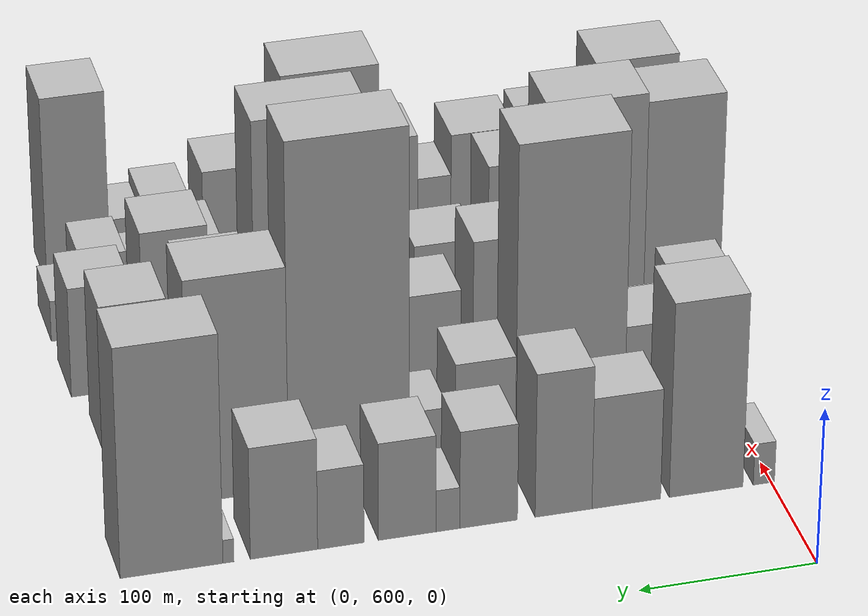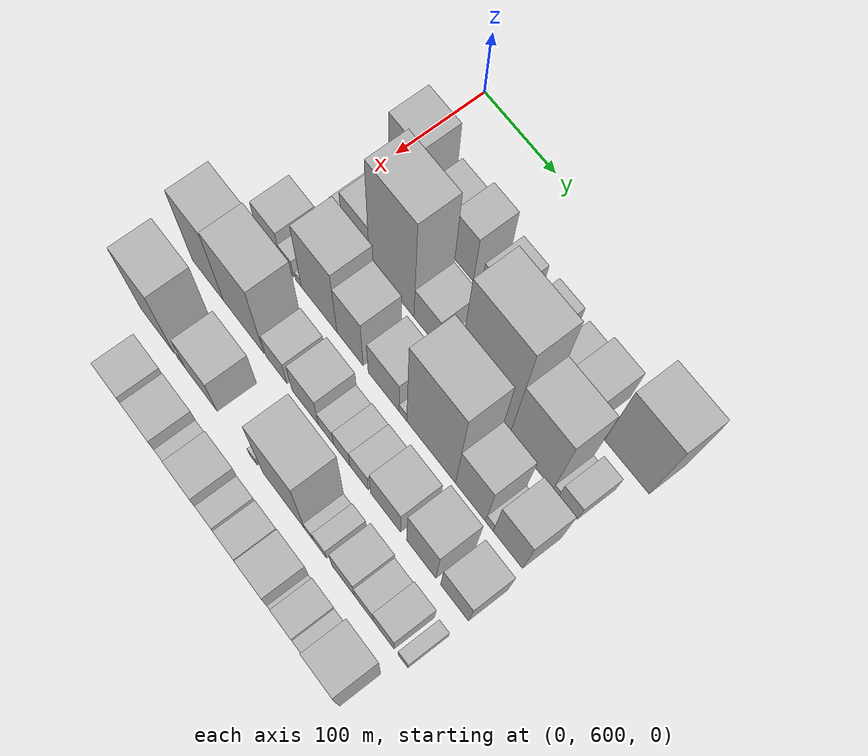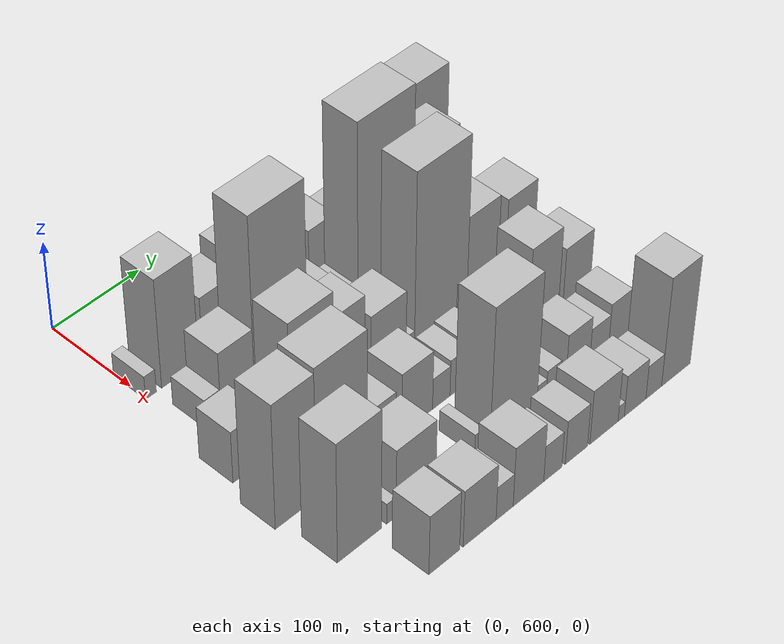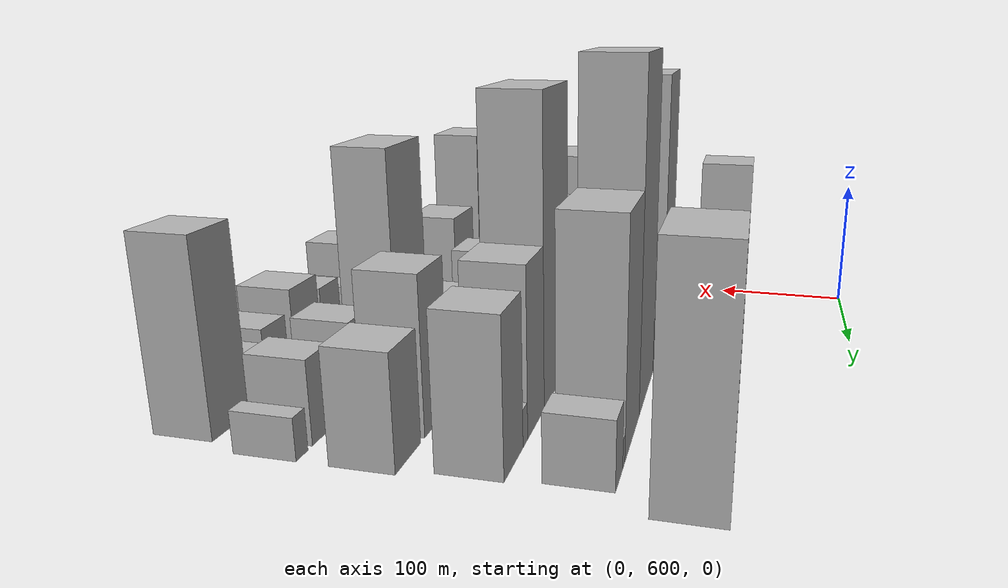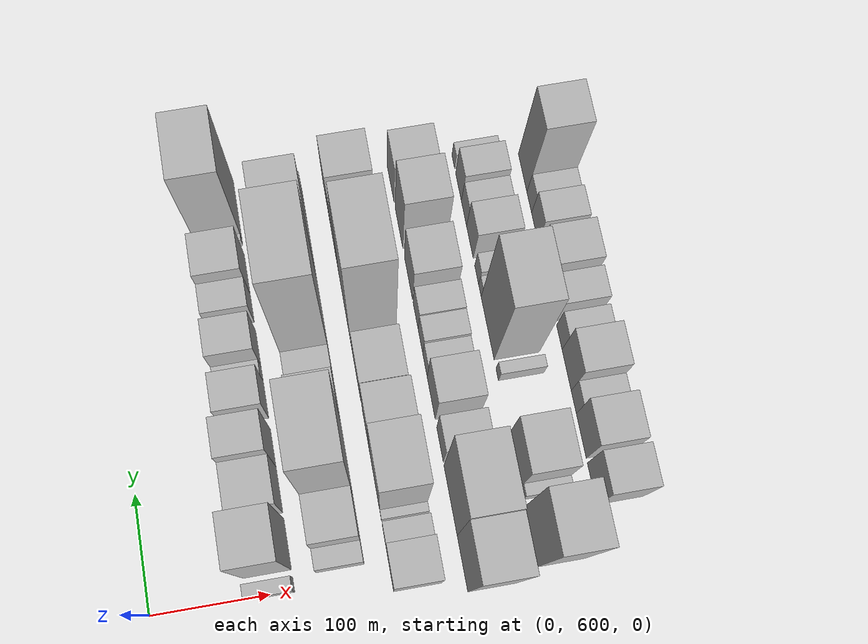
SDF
<sdf version="1.6">
 <world name="default">
  <model name="building_45">
   <static>1</static>
   <pose>100.0000 604.4444 0 0.000000 0.000000 0.000000</pose>
   <link name="link">
    <pose>0 0 13.50 0 0 0</pose>
    <collision name="collision"><geometry><box><size>40.0000 12.2811 27.0000</size></box></geometry></collision>
    <visual name="visual">
     <cast_shadows>0</cast_shadows>
     <geometry><box><size>40.0000 12.2811 27.0000</size></box></geometry>
     <material>
      <script>
       <uri>model://HANNAS_wall/materials/scripts</uri>
       <uri>model://HANNAS_wall/materials/textures</uri>
       <name>vrc/HANNAS_wall</name>
      </script>
     </material>
    </visual>
   </link>
  </model>
  <model name="building_46">
   <static>1</static>
   <pose>100.0000 637.7683 0 0.000000 0.000000 0.000000</pose>
   <link name="link">
    <pose>0 0 63.00 0 0 0</pose>
    <collision name="collision"><geometry><box><size>40.0000 42.3668 126.0000</size></box></geometry></collision>
    <visual name="visual">
     <cast_shadows>0</cast_shadows>
     <geometry><box><size>40.0000 42.3668 126.0000</size></box></geometry>
     <material>
      <script>
       <uri>model://HANNAS_wall/materials/scripts</uri>
       <uri>model://HANNAS_wall/materials/textures</uri>
       <name>vrc/HANNAS_wall</name>
      </script>
     </material>
    </visual>
   </link>
  </model>
  <model name="building_47">
   <static>1</static>
   <pose>100.0000 683.5927 0 0.000000 0.000000 0.000000</pose>
   <link name="link">
    <pose>0 0 36.00 0 0 0</pose>
    <collision name="collision"><geometry><box><size>40.0000 39.2818 72.0000</size></box></geometry></collision>
    <visual name="visual">
     <cast_shadows>0</cast_shadows>
     <geometry><box><size>40.0000 39.2818 72.0000</size></box></geometry>
     <material>
      <script>
       <uri>model://HANNAS_wall/materials/scripts</uri>
       <uri>model://HANNAS_wall/materials/textures</uri>
       <name>vrc/HANNAS_wall</name>
      </script>
     </material>
    </visual>
   </link>
  </model>
  <model name="building_48">
   <static>1</static>
   <pose>100.0000 719.4059 0 0.000000 0.000000 0.000000</pose>
   <link name="link">
    <pose>0 0 46.50 0 0 0</pose>
    <collision name="collision"><geometry><box><size>40.0000 32.3447 93.0000</size></box></geometry></collision>
    <visual name="visual">
     <cast_shadows>0</cast_shadows>
     <geometry><box><size>40.0000 32.3447 93.0000</size></box></geometry>
     <material>
      <script>
       <uri>model://HANNAS_wall/materials/scripts</uri>
       <uri>model://HANNAS_wall/materials/textures</uri>
       <name>vrc/HANNAS_wall</name>
      </script>
     </material>
    </visual>
   </link>
  </model>
  <model name="building_49">
   <static>1</static>
   <pose>100.0000 761.8796 0 0.000000 0.000000 0.000000</pose>
   <link name="link">
    <pose>0 0 31.50 0 0 0</pose>
    <collision name="collision"><geometry><box><size>40.0000 32.6027 63.0000</size></box></geometry></collision>
    <visual name="visual">
     <cast_shadows>0</cast_shadows>
     <geometry><box><size>40.0000 32.6027 63.0000</size></box></geometry>
     <material>
      <script>
       <uri>model://HANNAS_wall/materials/scripts</uri>
       <uri>model://HANNAS_wall/materials/textures</uri>
       <name>vrc/HANNAS_wall</name>
      </script>
     </material>
    </visual>
   </link>
  </model>
  <model name="building_50">
   <static>1</static>
   <pose>100.0000 784.9142 0 0.000000 0.000000 0.000000</pose>
   <link name="link">
    <pose>0 0 13.50 0 0 0</pose>
    <collision name="collision"><geometry><box><size>40.0000 13.4664 27.0000</size></box></geometry></collision>
    <visual name="visual">
     <cast_shadows>0</cast_shadows>
     <geometry><box><size>40.0000 13.4664 27.0000</size></box></geometry>
     <material>
      <script>
       <uri>model://HANNAS_wall/materials/scripts</uri>
       <uri>model://HANNAS_wall/materials/textures</uri>
       <name>vrc/HANNAS_wall</name>
      </script>
     </material>
    </visual>
   </link>
  </model>
  <model name="building_51">
   <static>1</static>
   <pose>100.0000 807.7742 0 0.000000 0.000000 0.000000</pose>
   <link name="link">
    <pose>0 0 31.50 0 0 0</pose>
    <collision name="collision"><geometry><box><size>40.0000 32.2536 63.0000</size></box></geometry></collision>
    <visual name="visual">
     <cast_shadows>0</cast_shadows>
     <geometry><box><size>40.0000 32.2536 63.0000</size></box></geometry>
     <material>
      <script>
       <uri>model://HANNAS_wall/materials/scripts</uri>
       <uri>model://HANNAS_wall/materials/textures</uri>
       <name>vrc/HANNAS_wall</name>
      </script>
     </material>
    </visual>
   </link>
  </model>
  <model name="building_52">
   <static>1</static>
   <pose>100.0000 844.8449 0 0.000000 0.000000 0.000000</pose>
   <link name="link">
    <pose>0 0 25.50 0 0 0</pose>
    <collision name="collision"><geometry><box><size>40.0000 25.8878 51.0000</size></box></geometry></collision>
    <visual name="visual">
     <cast_shadows>0</cast_shadows>
     <geometry><box><size>40.0000 25.8878 51.0000</size></box></geometry>
     <material>
      <script>
       <uri>model://HANNAS_wall/materials/scripts</uri>
       <uri>model://HANNAS_wall/materials/textures</uri>
       <name>vrc/HANNAS_wall</name>
      </script>
     </material>
    </visual>
   </link>
  </model>
  <model name="building_53">
   <static>1</static>
   <pose>100.0000 876.4943 0 0.000000 0.000000 0.000000</pose>
   <link name="link">
    <pose>0 0 36.00 0 0 0</pose>
    <collision name="collision"><geometry><box><size>40.0000 37.4111 72.0000</size></box></geometry></collision>
    <visual name="visual">
     <cast_shadows>0</cast_shadows>
     <geometry><box><size>40.0000 37.4111 72.0000</size></box></geometry>
     <material>
      <script>
       <uri>model://HANNAS_wall/materials/scripts</uri>
       <uri>model://HANNAS_wall/materials/textures</uri>
       <name>vrc/HANNAS_wall</name>
      </script>
     </material>
    </visual>
   </link>
  </model>
  <model name="building_54">
   <static>1</static>
   <pose>100.0000 907.2479 0 0.000000 0.000000 0.000000</pose>
   <link name="link">
    <pose>0 0 7.50 0 0 0</pose>
    <collision name="collision"><geometry><box><size>40.0000 6.0962 15.0000</size></box></geometry></collision>
    <visual name="visual">
     <cast_shadows>0</cast_shadows>
     <geometry><box><size>40.0000 6.0962 15.0000</size></box></geometry>
     <material>
      <script>
       <uri>model://HANNAS_wall/materials/scripts</uri>
       <uri>model://HANNAS_wall/materials/textures</uri>
       <name>vrc/HANNAS_wall</name>
      </script>
     </material>
    </visual>
   </link>
  </model>
  <model name="building_55">
   <static>1</static>
   <pose>100.0000 938.5832 0 0.000000 0.000000 0.000000</pose>
   <link name="link">
    <pose>0 0 73.50 0 0 0</pose>
    <collision name="collision"><geometry><box><size>40.0000 56.5743 147.0000</size></box></geometry></collision>
    <visual name="visual">
     <cast_shadows>0</cast_shadows>
     <geometry><box><size>40.0000 56.5743 147.0000</size></box></geometry>
     <material>
      <script>
       <uri>model://HANNAS_wall/materials/scripts</uri>
       <uri>model://HANNAS_wall/materials/textures</uri>
       <name>vrc/HANNAS_wall</name>
      </script>
     </material>
    </visual>
   </link>
  </model>
  <model name="building_95">
   <static>1</static>
   <pose>160.0000 619.4697 0 0.000000 0.000000 0.000000</pose>
   <link name="link">
    <pose>0 0 16.50 0 0 0</pose>
    <collision name="collision"><geometry><box><size>40.0000 17.6292 33.0000</size></box></geometry></collision>
    <visual name="visual">
     <cast_shadows>0</cast_shadows>
     <geometry><box><size>40.0000 17.6292 33.0000</size></box></geometry>
     <material>
      <script>
       <uri>model://HANNAS_wall/materials/scripts</uri>
       <uri>model://HANNAS_wall/materials/textures</uri>
       <name>vrc/HANNAS_wall</name>
      </script>
     </material>
    </visual>
   </link>
  </model>
  <model name="building_96">
   <static>1</static>
   <pose>160.0000 647.8211 0 0.000000 0.000000 0.000000</pose>
   <link name="link">
    <pose>0 0 37.50 0 0 0</pose>
    <collision name="collision"><geometry><box><size>40.0000 39.0735 75.0000</size></box></geometry></collision>
    <visual name="visual">
     <cast_shadows>0</cast_shadows>
     <geometry><box><size>40.0000 39.0735 75.0000</size></box></geometry>
     <material>
      <script>
       <uri>model://HANNAS_wall/materials/scripts</uri>
       <uri>model://HANNAS_wall/materials/textures</uri>
       <name>vrc/HANNAS_wall</name>
      </script>
     </material>
    </visual>
   </link>
  </model>
  <model name="building_97">
   <static>1</static>
   <pose>160.0000 698.8266 0 0.000000 0.000000 0.000000</pose>
   <link name="link">
    <pose>0 0 100.50 0 0 0</pose>
    <collision name="collision"><geometry><box><size>40.0000 62.9375 201.0000</size></box></geometry></collision>
    <visual name="visual">
     <cast_shadows>0</cast_shadows>
     <geometry><box><size>40.0000 62.9375 201.0000</size></box></geometry>
     <material>
      <script>
       <uri>model://HANNAS_wall/materials/scripts</uri>
       <uri>model://HANNAS_wall/materials/textures</uri>
       <name>vrc/HANNAS_wall</name>
      </script>
     </material>
    </visual>
   </link>
  </model>
  <model name="building_98">
   <static>1</static>
   <pose>160.0000 747.5904 0 0.000000 0.000000 0.000000</pose>
   <link name="link">
    <pose>0 0 33.00 0 0 0</pose>
    <collision name="collision"><geometry><box><size>40.0000 34.5901 66.0000</size></box></geometry></collision>
    <visual name="visual">
     <cast_shadows>0</cast_shadows>
     <geometry><box><size>40.0000 34.5901 66.0000</size></box></geometry>
     <material>
      <script>
       <uri>model://HANNAS_wall/materials/scripts</uri>
       <uri>model://HANNAS_wall/materials/textures</uri>
       <name>vrc/HANNAS_wall</name>
      </script>
     </material>
    </visual>
   </link>
  </model>
  <model name="building_99">
   <static>1</static>
   <pose>160.0000 780.0531 0 0.000000 0.000000 0.000000</pose>
   <link name="link">
    <pose>0 0 19.50 0 0 0</pose>
    <collision name="collision"><geometry><box><size>40.0000 22.3353 39.0000</size></box></geometry></collision>
    <visual name="visual">
     <cast_shadows>0</cast_shadows>
     <geometry><box><size>40.0000 22.3353 39.0000</size></box></geometry>
     <material>
      <script>
       <uri>model://HANNAS_wall/materials/scripts</uri>
       <uri>model://HANNAS_wall/materials/textures</uri>
       <name>vrc/HANNAS_wall</name>
      </script>
     </material>
    </visual>
   </link>
  </model>
  <model name="building_100">
   <static>1</static>
   <pose>160.0000 825.4965 0 0.000000 0.000000 0.000000</pose>
   <link name="link">
    <pose>0 0 111.00 0 0 0</pose>
    <collision name="collision"><geometry><box><size>40.0000 68.5515 222.0000</size></box></geometry></collision>
    <visual name="visual">
     <cast_shadows>0</cast_shadows>
     <geometry><box><size>40.0000 68.5515 222.0000</size></box></geometry>
     <material>
      <script>
       <uri>model://HANNAS_wall/materials/scripts</uri>
       <uri>model://HANNAS_wall/materials/textures</uri>
       <name>vrc/HANNAS_wall</name>
      </script>
     </material>
    </visual>
   </link>
  </model>
  <model name="building_101">
   <static>1</static>
   <pose>160.0000 888.1420 0 0.000000 0.000000 0.000000</pose>
   <link name="link">
    <pose>0 0 72.00 0 0 0</pose>
    <collision name="collision"><geometry><box><size>40.0000 56.7396 144.0000</size></box></geometry></collision>
    <visual name="visual">
     <cast_shadows>0</cast_shadows>
     <geometry><box><size>40.0000 56.7396 144.0000</size></box></geometry>
     <material>
      <script>
       <uri>model://HANNAS_wall/materials/scripts</uri>
       <uri>model://HANNAS_wall/materials/textures</uri>
       <name>vrc/HANNAS_wall</name>
      </script>
     </material>
    </visual>
   </link>
  </model>
  <model name="building_102">
   <static>1</static>
   <pose>160.0000 920.1755 0 0.000000 0.000000 0.000000</pose>
   <link name="link">
    <pose>0 0 9.00 0 0 0</pose>
    <collision name="collision"><geometry><box><size>40.0000 7.3274 18.0000</size></box></geometry></collision>
    <visual name="visual">
     <cast_shadows>0</cast_shadows>
     <geometry><box><size>40.0000 7.3274 18.0000</size></box></geometry>
     <material>
      <script>
       <uri>model://HANNAS_wall/materials/scripts</uri>
       <uri>model://HANNAS_wall/materials/textures</uri>
       <name>vrc/HANNAS_wall</name>
      </script>
     </material>
    </visual>
   </link>
  </model>
  <model name="building_103">
   <static>1</static>
   <pose>160.0000 935.6864 0 0.000000 0.000000 0.000000</pose>
   <link name="link">
    <pose>0 0 21.00 0 0 0</pose>
    <collision name="collision"><geometry><box><size>40.0000 23.6943 42.0000</size></box></geometry></collision>
    <visual name="visual">
     <cast_shadows>0</cast_shadows>
     <geometry><box><size>40.0000 23.6943 42.0000</size></box></geometry>
     <material>
      <script>
       <uri>model://HANNAS_wall/materials/scripts</uri>
       <uri>model://HANNAS_wall/materials/textures</uri>
       <name>vrc/HANNAS_wall</name>
      </script>
     </material>
    </visual>
   </link>
  </model>
  <model name="building_147">
   <static>1</static>
   <pose>220.0000 602.4868 0 0.000000 0.000000 0.000000</pose>
   <link name="link">
    <pose>0 0 30.00 0 0 0</pose>
    <collision name="collision"><geometry><box><size>40.0000 35.6478 60.0000</size></box></geometry></collision>
    <visual name="visual">
     <cast_shadows>0</cast_shadows>
     <geometry><box><size>40.0000 35.6478 60.0000</size></box></geometry>
     <material>
      <script>
       <uri>model://HANNAS_wall/materials/scripts</uri>
       <uri>model://HANNAS_wall/materials/textures</uri>
       <name>vrc/HANNAS_wall</name>
      </script>
     </material>
    </visual>
   </link>
  </model>
  <model name="building_148">
   <static>1</static>
   <pose>220.0000 629.9202 0 0.000000 0.000000 0.000000</pose>
   <link name="link">
    <pose>0 0 18.00 0 0 0</pose>
    <collision name="collision"><geometry><box><size>40.0000 19.2191 36.0000</size></box></geometry></collision>
    <visual name="visual">
     <cast_shadows>0</cast_shadows>
     <geometry><box><size>40.0000 19.2191 36.0000</size></box></geometry>
     <material>
      <script>
       <uri>model://HANNAS_wall/materials/scripts</uri>
       <uri>model://HANNAS_wall/materials/textures</uri>
       <name>vrc/HANNAS_wall</name>
      </script>
     </material>
    </visual>
   </link>
  </model>
  <model name="building_149">
   <static>1</static>
   <pose>220.0000 646.6176 0 0.000000 0.000000 0.000000</pose>
   <link name="link">
    <pose>0 0 9.00 0 0 0</pose>
    <collision name="collision"><geometry><box><size>40.0000 8.1757 18.0000</size></box></geometry></collision>
    <visual name="visual">
     <cast_shadows>0</cast_shadows>
     <geometry><box><size>40.0000 8.1757 18.0000</size></box></geometry>
     <material>
      <script>
       <uri>model://HANNAS_wall/materials/scripts</uri>
       <uri>model://HANNAS_wall/materials/textures</uri>
       <name>vrc/HANNAS_wall</name>
      </script>
     </material>
    </visual>
   </link>
  </model>
  <model name="building_150">
   <static>1</static>
   <pose>220.0000 676.2744 0 0.000000 0.000000 0.000000</pose>
   <link name="link">
    <pose>0 0 67.50 0 0 0</pose>
    <collision name="collision"><geometry><box><size>40.0000 51.1379 135.0000</size></box></geometry></collision>
    <visual name="visual">
     <cast_shadows>0</cast_shadows>
     <geometry><box><size>40.0000 51.1379 135.0000</size></box></geometry>
     <material>
      <script>
       <uri>model://HANNAS_wall/materials/scripts</uri>
       <uri>model://HANNAS_wall/materials/textures</uri>
       <name>vrc/HANNAS_wall</name>
      </script>
     </material>
    </visual>
   </link>
  </model>
  <model name="building_151">
   <static>1</static>
   <pose>220.0000 720.2841 0 0.000000 0.000000 0.000000</pose>
   <link name="link">
    <pose>0 0 52.50 0 0 0</pose>
    <collision name="collision"><geometry><box><size>40.0000 36.8814 105.0000</size></box></geometry></collision>
    <visual name="visual">
     <cast_shadows>0</cast_shadows>
     <geometry><box><size>40.0000 36.8814 105.0000</size></box></geometry>
     <material>
      <script>
       <uri>model://HANNAS_wall/materials/scripts</uri>
       <uri>model://HANNAS_wall/materials/textures</uri>
       <name>vrc/HANNAS_wall</name>
      </script>
     </material>
    </visual>
   </link>
  </model>
  <model name="building_152">
   <static>1</static>
   <pose>220.0000 767.0459 0 0.000000 0.000000 0.000000</pose>
   <link name="link">
    <pose>0 0 37.50 0 0 0</pose>
    <collision name="collision"><geometry><box><size>40.0000 42.6423 75.0000</size></box></geometry></collision>
    <visual name="visual">
     <cast_shadows>0</cast_shadows>
     <geometry><box><size>40.0000 42.6423 75.0000</size></box></geometry>
     <material>
      <script>
       <uri>model://HANNAS_wall/materials/scripts</uri>
       <uri>model://HANNAS_wall/materials/textures</uri>
       <name>vrc/HANNAS_wall</name>
      </script>
     </material>
    </visual>
   </link>
  </model>
  <model name="building_153">
   <static>1</static>
   <pose>220.0000 793.5756 0 0.000000 0.000000 0.000000</pose>
   <link name="link">
    <pose>0 0 10.50 0 0 0</pose>
    <collision name="collision"><geometry><box><size>40.0000 10.4171 21.0000</size></box></geometry></collision>
    <visual name="visual">
     <cast_shadows>0</cast_shadows>
     <geometry><box><size>40.0000 10.4171 21.0000</size></box></geometry>
     <material>
      <script>
       <uri>model://HANNAS_wall/materials/scripts</uri>
       <uri>model://HANNAS_wall/materials/textures</uri>
       <name>vrc/HANNAS_wall</name>
      </script>
     </material>
    </visual>
   </link>
  </model>
  <model name="building_154">
   <static>1</static>
   <pose>220.0000 831.5113 0 0.000000 0.000000 0.000000</pose>
   <link name="link">
    <pose>0 0 100.50 0 0 0</pose>
    <collision name="collision"><geometry><box><size>40.0000 65.4541 201.0000</size></box></geometry></collision>
    <visual name="visual">
     <cast_shadows>0</cast_shadows>
     <geometry><box><size>40.0000 65.4541 201.0000</size></box></geometry>
     <material>
      <script>
       <uri>model://HANNAS_wall/materials/scripts</uri>
       <uri>model://HANNAS_wall/materials/textures</uri>
       <name>vrc/HANNAS_wall</name>
      </script>
     </material>
    </visual>
   </link>
  </model>
  <model name="building_155">
   <static>1</static>
   <pose>220.0000 883.9529 0 0.000000 0.000000 0.000000</pose>
   <link name="link">
    <pose>0 0 54.00 0 0 0</pose>
    <collision name="collision"><geometry><box><size>40.0000 39.4293 108.0000</size></box></geometry></collision>
    <visual name="visual">
     <cast_shadows>0</cast_shadows>
     <geometry><box><size>40.0000 39.4293 108.0000</size></box></geometry>
     <material>
      <script>
       <uri>model://HANNAS_wall/materials/scripts</uri>
       <uri>model://HANNAS_wall/materials/textures</uri>
       <name>vrc/HANNAS_wall</name>
      </script>
     </material>
    </visual>
   </link>
  </model>
  <model name="building_156">
   <static>1</static>
   <pose>220.0000 908.7116 0 0.000000 0.000000 0.000000</pose>
   <link name="link">
    <pose>0 0 12.00 0 0 0</pose>
    <collision name="collision"><geometry><box><size>40.0000 10.0881 24.0000</size></box></geometry></collision>
    <visual name="visual">
     <cast_shadows>0</cast_shadows>
     <geometry><box><size>40.0000 10.0881 24.0000</size></box></geometry>
     <material>
      <script>
       <uri>model://HANNAS_wall/materials/scripts</uri>
       <uri>model://HANNAS_wall/materials/textures</uri>
       <name>vrc/HANNAS_wall</name>
      </script>
     </material>
    </visual>
   </link>
  </model>
  <model name="building_157">
   <static>1</static>
   <pose>220.0000 932.6197 0 0.000000 0.000000 0.000000</pose>
   <link name="link">
    <pose>0 0 48.00 0 0 0</pose>
    <collision name="collision"><geometry><box><size>40.0000 37.7281 96.0000</size></box></geometry></collision>
    <visual name="visual">
     <cast_shadows>0</cast_shadows>
     <geometry><box><size>40.0000 37.7281 96.0000</size></box></geometry>
     <material>
      <script>
       <uri>model://HANNAS_wall/materials/scripts</uri>
       <uri>model://HANNAS_wall/materials/textures</uri>
       <name>vrc/HANNAS_wall</name>
      </script>
     </material>
    </visual>
   </link>
  </model>
  <model name="building_201">
   <static>1</static>
   <pose>280.0000 597.0783 0 0.000000 0.000000 0.000000</pose>
   <link name="link">
    <pose>0 0 72.00 0 0 0</pose>
    <collision name="collision"><geometry><box><size>40.0000 46.2759 144.0000</size></box></geometry></collision>
    <visual name="visual">
     <cast_shadows>0</cast_shadows>
     <geometry><box><size>40.0000 46.2759 144.0000</size></box></geometry>
     <material>
      <script>
       <uri>model://HANNAS_wall/materials/scripts</uri>
       <uri>model://HANNAS_wall/materials/textures</uri>
       <name>vrc/HANNAS_wall</name>
      </script>
     </material>
    </visual>
   </link>
  </model>
  <model name="building_202">
   <static>1</static>
   <pose>280.0000 649.9996 0 0.000000 0.000000 0.000000</pose>
   <link name="link">
    <pose>0 0 75.00 0 0 0</pose>
    <collision name="collision"><geometry><box><size>40.0000 59.5668 150.0000</size></box></geometry></collision>
    <visual name="visual">
     <cast_shadows>0</cast_shadows>
     <geometry><box><size>40.0000 59.5668 150.0000</size></box></geometry>
     <material>
      <script>
       <uri>model://HANNAS_wall/materials/scripts</uri>
       <uri>model://HANNAS_wall/materials/textures</uri>
       <name>vrc/HANNAS_wall</name>
      </script>
     </material>
    </visual>
   </link>
  </model>
  <model name="building_203">
   <static>1</static>
   <pose>280.0000 697.8789 0 0.000000 0.000000 0.000000</pose>
   <link name="link">
    <pose>0 0 27.00 0 0 0</pose>
    <collision name="collision"><geometry><box><size>40.0000 30.1918 54.0000</size></box></geometry></collision>
    <visual name="visual">
     <cast_shadows>0</cast_shadows>
     <geometry><box><size>40.0000 30.1918 54.0000</size></box></geometry>
     <material>
      <script>
       <uri>model://HANNAS_wall/materials/scripts</uri>
       <uri>model://HANNAS_wall/materials/textures</uri>
       <name>vrc/HANNAS_wall</name>
      </script>
     </material>
    </visual>
   </link>
  </model>
  <model name="building_204">
   <static>1</static>
   <pose>280.0000 738.6582 0 0.000000 0.000000 0.000000</pose>
   <link name="link">
    <pose>0 0 34.50 0 0 0</pose>
    <collision name="collision"><geometry><box><size>40.0000 37.3668 69.0000</size></box></geometry></collision>
    <visual name="visual">
     <cast_shadows>0</cast_shadows>
     <geometry><box><size>40.0000 37.3668 69.0000</size></box></geometry>
     <material>
      <script>
       <uri>model://HANNAS_wall/materials/scripts</uri>
       <uri>model://HANNAS_wall/materials/textures</uri>
       <name>vrc/HANNAS_wall</name>
      </script>
     </material>
    </visual>
   </link>
  </model>
  <model name="building_205">
   <static>1</static>
   <pose>280.0000 767.9645 0 0.000000 0.000000 0.000000</pose>
   <link name="link">
    <pose>0 0 18.00 0 0 0</pose>
    <collision name="collision"><geometry><box><size>40.0000 21.2460 36.0000</size></box></geometry></collision>
    <visual name="visual">
     <cast_shadows>0</cast_shadows>
     <geometry><box><size>40.0000 21.2460 36.0000</size></box></geometry>
     <material>
      <script>
       <uri>model://HANNAS_wall/materials/scripts</uri>
       <uri>model://HANNAS_wall/materials/textures</uri>
       <name>vrc/HANNAS_wall</name>
      </script>
     </material>
    </visual>
   </link>
  </model>
  <model name="building_206">
   <static>1</static>
   <pose>280.0000 789.7602 0 0.000000 0.000000 0.000000</pose>
   <link name="link">
    <pose>0 0 21.00 0 0 0</pose>
    <collision name="collision"><geometry><box><size>40.0000 22.3453 42.0000</size></box></geometry></collision>
    <visual name="visual">
     <cast_shadows>0</cast_shadows>
     <geometry><box><size>40.0000 22.3453 42.0000</size></box></geometry>
     <material>
      <script>
       <uri>model://HANNAS_wall/materials/scripts</uri>
       <uri>model://HANNAS_wall/materials/textures</uri>
       <name>vrc/HANNAS_wall</name>
      </script>
     </material>
    </visual>
   </link>
  </model>
  <model name="building_207">
   <static>1</static>
   <pose>280.0000 813.4301 0 0.000000 0.000000 0.000000</pose>
   <link name="link">
    <pose>0 0 22.50 0 0 0</pose>
    <collision name="collision"><geometry><box><size>40.0000 24.9946 45.0000</size></box></geometry></collision>
    <visual name="visual">
     <cast_shadows>0</cast_shadows>
     <geometry><box><size>40.0000 24.9946 45.0000</size></box></geometry>
     <material>
      <script>
       <uri>model://HANNAS_wall/materials/scripts</uri>
       <uri>model://HANNAS_wall/materials/textures</uri>
       <name>vrc/HANNAS_wall</name>
      </script>
     </material>
    </visual>
   </link>
  </model>
  <model name="building_208">
   <static>1</static>
   <pose>280.0000 849.0471 0 0.000000 0.000000 0.000000</pose>
   <link name="link">
    <pose>0 0 34.50 0 0 0</pose>
    <collision name="collision"><geometry><box><size>40.0000 40.2394 69.0000</size></box></geometry></collision>
    <visual name="visual">
     <cast_shadows>0</cast_shadows>
     <geometry><box><size>40.0000 40.2394 69.0000</size></box></geometry>
     <material>
      <script>
       <uri>model://HANNAS_wall/materials/scripts</uri>
       <uri>model://HANNAS_wall/materials/textures</uri>
       <name>vrc/HANNAS_wall</name>
      </script>
     </material>
    </visual>
   </link>
  </model>
  <model name="building_209">
   <static>1</static>
   <pose>280.0000 896.4880 0 0.000000 0.000000 0.000000</pose>
   <link name="link">
    <pose>0 0 51.00 0 0 0</pose>
    <collision name="collision"><geometry><box><size>40.0000 38.6424 102.0000</size></box></geometry></collision>
    <visual name="visual">
     <cast_shadows>0</cast_shadows>
     <geometry><box><size>40.0000 38.6424 102.0000</size></box></geometry>
     <material>
      <script>
       <uri>model://HANNAS_wall/materials/scripts</uri>
       <uri>model://HANNAS_wall/materials/textures</uri>
       <name>vrc/HANNAS_wall</name>
      </script>
     </material>
    </visual>
   </link>
  </model>
  <model name="building_210">
   <static>1</static>
   <pose>280.0000 939.8408 0 0.000000 0.000000 0.000000</pose>
   <link name="link">
    <pose>0 0 36.00 0 0 0</pose>
    <collision name="collision"><geometry><box><size>40.0000 36.0632 72.0000</size></box></geometry></collision>
    <visual name="visual">
     <cast_shadows>0</cast_shadows>
     <geometry><box><size>40.0000 36.0632 72.0000</size></box></geometry>
     <material>
      <script>
       <uri>model://HANNAS_wall/materials/scripts</uri>
       <uri>model://HANNAS_wall/materials/textures</uri>
       <name>vrc/HANNAS_wall</name>
      </script>
     </material>
    </visual>
   </link>
  </model>
  <model name="building_252">
   <static>1</static>
   <pose>340.0000 608.8354 0 0.000000 0.000000 0.000000</pose>
   <link name="link">
    <pose>0 0 69.00 0 0 0</pose>
    <collision name="collision"><geometry><box><size>40.0000 50.2020 138.0000</size></box></geometry></collision>
    <visual name="visual">
     <cast_shadows>0</cast_shadows>
     <geometry><box><size>40.0000 50.2020 138.0000</size></box></geometry>
     <material>
      <script>
       <uri>model://HANNAS_wall/materials/scripts</uri>
       <uri>model://HANNAS_wall/materials/textures</uri>
       <name>vrc/HANNAS_wall</name>
      </script>
     </material>
    </visual>
   </link>
  </model>
  <model name="building_253">
   <static>1</static>
   <pose>340.0000 645.3486 0 0.000000 0.000000 0.000000</pose>
   <link name="link">
    <pose>0 0 12.00 0 0 0</pose>
    <collision name="collision"><geometry><box><size>40.0000 10.8243 24.0000</size></box></geometry></collision>
    <visual name="visual">
     <cast_shadows>0</cast_shadows>
     <geometry><box><size>40.0000 10.8243 24.0000</size></box></geometry>
     <material>
      <script>
       <uri>model://HANNAS_wall/materials/scripts</uri>
       <uri>model://HANNAS_wall/materials/textures</uri>
       <name>vrc/HANNAS_wall</name>
      </script>
     </material>
    </visual>
   </link>
  </model>
  <model name="building_254">
   <static>1</static>
   <pose>340.0000 673.9773 0 0.000000 0.000000 0.000000</pose>
   <link name="link">
    <pose>0 0 39.00 0 0 0</pose>
    <collision name="collision"><geometry><box><size>40.0000 46.4331 78.0000</size></box></geometry></collision>
    <visual name="visual">
     <cast_shadows>0</cast_shadows>
     <geometry><box><size>40.0000 46.4331 78.0000</size></box></geometry>
     <material>
      <script>
       <uri>model://HANNAS_wall/materials/scripts</uri>
       <uri>model://HANNAS_wall/materials/textures</uri>
       <name>vrc/HANNAS_wall</name>
      </script>
     </material>
    </visual>
   </link>
  </model>
  <model name="building_255">
   <static>1</static>
   <pose>340.0000 749.3619 0 0.000000 0.000000 0.000000</pose>
   <link name="link">
    <pose>0 0 12.00 0 0 0</pose>
    <collision name="collision"><geometry><box><size>40.0000 10.7787 24.0000</size></box></geometry></collision>
    <visual name="visual">
     <cast_shadows>0</cast_shadows>
     <geometry><box><size>40.0000 10.7787 24.0000</size></box></geometry>
     <material>
      <script>
       <uri>model://HANNAS_wall/materials/scripts</uri>
       <uri>model://HANNAS_wall/materials/textures</uri>
       <name>vrc/HANNAS_wall</name>
      </script>
     </material>
    </visual>
   </link>
  </model>
  <model name="building_256">
   <static>1</static>
   <pose>340.0000 791.6091 0 0.000000 0.000000 0.000000</pose>
   <link name="link">
    <pose>0 0 78.00 0 0 0</pose>
    <collision name="collision"><geometry><box><size>40.0000 57.7158 156.0000</size></box></geometry></collision>
    <visual name="visual">
     <cast_shadows>0</cast_shadows>
     <geometry><box><size>40.0000 57.7158 156.0000</size></box></geometry>
     <material>
      <script>
       <uri>model://HANNAS_wall/materials/scripts</uri>
       <uri>model://HANNAS_wall/materials/textures</uri>
       <name>vrc/HANNAS_wall</name>
      </script>
     </material>
    </visual>
   </link>
  </model>
  <model name="building_257">
   <static>1</static>
   <pose>340.0000 826.3903 0 0.000000 0.000000 0.000000</pose>
   <link name="link">
    <pose>0 0 12.00 0 0 0</pose>
    <collision name="collision"><geometry><box><size>40.0000 11.8464 24.0000</size></box></geometry></collision>
    <visual name="visual">
     <cast_shadows>0</cast_shadows>
     <geometry><box><size>40.0000 11.8464 24.0000</size></box></geometry>
     <material>
      <script>
       <uri>model://HANNAS_wall/materials/scripts</uri>
       <uri>model://HANNAS_wall/materials/textures</uri>
       <name>vrc/HANNAS_wall</name>
      </script>
     </material>
    </visual>
   </link>
  </model>
  <model name="building_258">
   <static>1</static>
   <pose>340.0000 841.2534 0 0.000000 0.000000 0.000000</pose>
   <link name="link">
    <pose>0 0 16.50 0 0 0</pose>
    <collision name="collision"><geometry><box><size>40.0000 17.8797 33.0000</size></box></geometry></collision>
    <visual name="visual">
     <cast_shadows>0</cast_shadows>
     <geometry><box><size>40.0000 17.8797 33.0000</size></box></geometry>
     <material>
      <script>
       <uri>model://HANNAS_wall/materials/scripts</uri>
       <uri>model://HANNAS_wall/materials/textures</uri>
       <name>vrc/HANNAS_wall</name>
      </script>
     </material>
    </visual>
   </link>
  </model>
  <model name="building_259">
   <static>1</static>
   <pose>340.0000 872.4992 0 0.000000 0.000000 0.000000</pose>
   <link name="link">
    <pose>0 0 28.50 0 0 0</pose>
    <collision name="collision"><geometry><box><size>40.0000 30.6119 57.0000</size></box></geometry></collision>
    <visual name="visual">
     <cast_shadows>0</cast_shadows>
     <geometry><box><size>40.0000 30.6119 57.0000</size></box></geometry>
     <material>
      <script>
       <uri>model://HANNAS_wall/materials/scripts</uri>
       <uri>model://HANNAS_wall/materials/textures</uri>
       <name>vrc/HANNAS_wall</name>
      </script>
     </material>
    </visual>
   </link>
  </model>
  <model name="building_260">
   <static>1</static>
   <pose>340.0000 900.0999 0 0.000000 0.000000 0.000000</pose>
   <link name="link">
    <pose>0 0 21.00 0 0 0</pose>
    <collision name="collision"><geometry><box><size>40.0000 24.5896 42.0000</size></box></geometry></collision>
    <visual name="visual">
     <cast_shadows>0</cast_shadows>
     <geometry><box><size>40.0000 24.5896 42.0000</size></box></geometry>
     <material>
      <script>
       <uri>model://HANNAS_wall/materials/scripts</uri>
       <uri>model://HANNAS_wall/materials/textures</uri>
       <name>vrc/HANNAS_wall</name>
      </script>
     </material>
    </visual>
   </link>
  </model>
  <model name="building_261">
   <static>1</static>
   <pose>340.0000 926.0290 0 0.000000 0.000000 0.000000</pose>
   <link name="link">
    <pose>0 0 27.00 0 0 0</pose>
    <collision name="collision"><geometry><box><size>40.0000 27.2685 54.0000</size></box></geometry></collision>
    <visual name="visual">
     <cast_shadows>0</cast_shadows>
     <geometry><box><size>40.0000 27.2685 54.0000</size></box></geometry>
     <material>
      <script>
       <uri>model://HANNAS_wall/materials/scripts</uri>
       <uri>model://HANNAS_wall/materials/textures</uri>
       <name>vrc/HANNAS_wall</name>
      </script>
     </material>
    </visual>
   </link>
  </model>
  <model name="building_262">
   <static>1</static>
   <pose>340.0000 951.1981 0 0.000000 0.000000 0.000000</pose>
   <link name="link">
    <pose>0 0 13.50 0 0 0</pose>
    <collision name="collision"><geometry><box><size>40.0000 13.0696 27.0000</size></box></geometry></collision>
    <visual name="visual">
     <cast_shadows>0</cast_shadows>
     <geometry><box><size>40.0000 13.0696 27.0000</size></box></geometry>
     <material>
      <script>
       <uri>model://HANNAS_wall/materials/scripts</uri>
       <uri>model://HANNAS_wall/materials/textures</uri>
       <name>vrc/HANNAS_wall</name>
      </script>
     </material>
    </visual>
   </link>
  </model>
  <model name="building_302">
   <static>1</static>
   <pose>400.0000 643.1493 0 0.000000 0.000000 0.000000</pose>
   <link name="link">
    <pose>0 0 34.50 0 0 0</pose>
    <collision name="collision"><geometry><box><size>40.0000 35.6273 69.0000</size></box></geometry></collision>
    <visual name="visual">
     <cast_shadows>0</cast_shadows>
     <geometry><box><size>40.0000 35.6273 69.0000</size></box></geometry>
     <material>
      <script>
       <uri>model://HANNAS_wall/materials/scripts</uri>
       <uri>model://HANNAS_wall/materials/textures</uri>
       <name>vrc/HANNAS_wall</name>
      </script>
     </material>
    </visual>
   </link>
  </model>
  <model name="building_303">
   <static>1</static>
   <pose>400.0000 684.4222 0 0.000000 0.000000 0.000000</pose>
   <link name="link">
    <pose>0 0 33.00 0 0 0</pose>
    <collision name="collision"><geometry><box><size>40.0000 38.9183 66.0000</size></box></geometry></collision>
    <visual name="visual">
     <cast_shadows>0</cast_shadows>
     <geometry><box><size>40.0000 38.9183 66.0000</size></box></geometry>
     <material>
      <script>
       <uri>model://HANNAS_wall/materials/scripts</uri>
       <uri>model://HANNAS_wall/materials/textures</uri>
       <name>vrc/HANNAS_wall</name>
      </script>
     </material>
    </visual>
   </link>
  </model>
  <model name="building_304">
   <static>1</static>
   <pose>400.0000 714.1056 0 0.000000 0.000000 0.000000</pose>
   <link name="link">
    <pose>0 0 19.50 0 0 0</pose>
    <collision name="collision"><geometry><box><size>40.0000 20.4485 39.0000</size></box></geometry></collision>
    <visual name="visual">
     <cast_shadows>0</cast_shadows>
     <geometry><box><size>40.0000 20.4485 39.0000</size></box></geometry>
     <material>
      <script>
       <uri>model://HANNAS_wall/materials/scripts</uri>
       <uri>model://HANNAS_wall/materials/textures</uri>
       <name>vrc/HANNAS_wall</name>
      </script>
     </material>
    </visual>
   </link>
  </model>
  <model name="building_305">
   <static>1</static>
   <pose>400.0000 742.8752 0 0.000000 0.000000 0.000000</pose>
   <link name="link">
    <pose>0 0 34.50 0 0 0</pose>
    <collision name="collision"><geometry><box><size>40.0000 37.0908 69.0000</size></box></geometry></collision>
    <visual name="visual">
     <cast_shadows>0</cast_shadows>
     <geometry><box><size>40.0000 37.0908 69.0000</size></box></geometry>
     <material>
      <script>
       <uri>model://HANNAS_wall/materials/scripts</uri>
       <uri>model://HANNAS_wall/materials/textures</uri>
       <name>vrc/HANNAS_wall</name>
      </script>
     </material>
    </visual>
   </link>
  </model>
  <model name="building_306">
   <static>1</static>
   <pose>400.0000 772.6370 0 0.000000 0.000000 0.000000</pose>
   <link name="link">
    <pose>0 0 21.00 0 0 0</pose>
    <collision name="collision"><geometry><box><size>40.0000 22.4329 42.0000</size></box></geometry></collision>
    <visual name="visual">
     <cast_shadows>0</cast_shadows>
     <geometry><box><size>40.0000 22.4329 42.0000</size></box></geometry>
     <material>
      <script>
       <uri>model://HANNAS_wall/materials/scripts</uri>
       <uri>model://HANNAS_wall/materials/textures</uri>
       <name>vrc/HANNAS_wall</name>
      </script>
     </material>
    </visual>
   </link>
  </model>
  <model name="building_307">
   <static>1</static>
   <pose>400.0000 801.7914 0 0.000000 0.000000 0.000000</pose>
   <link name="link">
    <pose>0 0 25.50 0 0 0</pose>
    <collision name="collision"><geometry><box><size>40.0000 27.8758 51.0000</size></box></geometry></collision>
    <visual name="visual">
     <cast_shadows>0</cast_shadows>
     <geometry><box><size>40.0000 27.8758 51.0000</size></box></geometry>
     <material>
      <script>
       <uri>model://HANNAS_wall/materials/scripts</uri>
       <uri>model://HANNAS_wall/materials/textures</uri>
       <name>vrc/HANNAS_wall</name>
      </script>
     </material>
    </visual>
   </link>
  </model>
  <model name="building_308">
   <static>1</static>
   <pose>400.0000 836.5966 0 0.000000 0.000000 0.000000</pose>
   <link name="link">
    <pose>0 0 31.50 0 0 0</pose>
    <collision name="collision"><geometry><box><size>40.0000 35.7346 63.0000</size></box></geometry></collision>
    <visual name="visual">
     <cast_shadows>0</cast_shadows>
     <geometry><box><size>40.0000 35.7346 63.0000</size></box></geometry>
     <material>
      <script>
       <uri>model://HANNAS_wall/materials/scripts</uri>
       <uri>model://HANNAS_wall/materials/textures</uri>
       <name>vrc/HANNAS_wall</name>
      </script>
     </material>
    </visual>
   </link>
  </model>
  <model name="building_309">
   <static>1</static>
   <pose>400.0000 858.4414 0 0.000000 0.000000 0.000000</pose>
   <link name="link">
    <pose>0 0 9.00 0 0 0</pose>
    <collision name="collision"><geometry><box><size>40.0000 7.9550 18.0000</size></box></geometry></collision>
    <visual name="visual">
     <cast_shadows>0</cast_shadows>
     <geometry><box><size>40.0000 7.9550 18.0000</size></box></geometry>
     <material>
      <script>
       <uri>model://HANNAS_wall/materials/scripts</uri>
       <uri>model://HANNAS_wall/materials/textures</uri>
       <name>vrc/HANNAS_wall</name>
      </script>
     </material>
    </visual>
   </link>
  </model>
  <model name="building_310">
   <static>1</static>
   <pose>400.0000 876.3487 0 0.000000 0.000000 0.000000</pose>
   <link name="link">
    <pose>0 0 24.00 0 0 0</pose>
    <collision name="collision"><geometry><box><size>40.0000 27.8596 48.0000</size></box></geometry></collision>
    <visual name="visual">
     <cast_shadows>0</cast_shadows>
     <geometry><box><size>40.0000 27.8596 48.0000</size></box></geometry>
     <material>
      <script>
       <uri>model://HANNAS_wall/materials/scripts</uri>
       <uri>model://HANNAS_wall/materials/textures</uri>
       <name>vrc/HANNAS_wall</name>
      </script>
     </material>
    </visual>
   </link>
  </model>
  <model name="building_311">
   <static>1</static>
   <pose>400.0000 900.5161 0 0.000000 0.000000 0.000000</pose>
   <link name="link">
    <pose>0 0 19.50 0 0 0</pose>
    <collision name="collision"><geometry><box><size>40.0000 20.4752 39.0000</size></box></geometry></collision>
    <visual name="visual">
     <cast_shadows>0</cast_shadows>
     <geometry><box><size>40.0000 20.4752 39.0000</size></box></geometry>
     <material>
      <script>
       <uri>model://HANNAS_wall/materials/scripts</uri>
       <uri>model://HANNAS_wall/materials/textures</uri>
       <name>vrc/HANNAS_wall</name>
      </script>
     </material>
    </visual>
   </link>
  </model>
  <model name="building_312">
   <static>1</static>
   <pose>400.0000 929.6976 0 0.000000 0.000000 0.000000</pose>
   <link name="link">
    <pose>0 0 63.00 0 0 0</pose>
    <collision name="collision"><geometry><box><size>40.0000 37.8877 126.0000</size></box></geometry></collision>
    <visual name="visual">
     <cast_shadows>0</cast_shadows>
     <geometry><box><size>40.0000 37.8877 126.0000</size></box></geometry>
     <material>
      <script>
       <uri>model://HANNAS_wall/materials/scripts</uri>
       <uri>model://HANNAS_wall/materials/textures</uri>
       <name>vrc/HANNAS_wall</name>
      </script>
     </material>
    </visual>
   </link>
  </model>
 </world>
</sdf>
